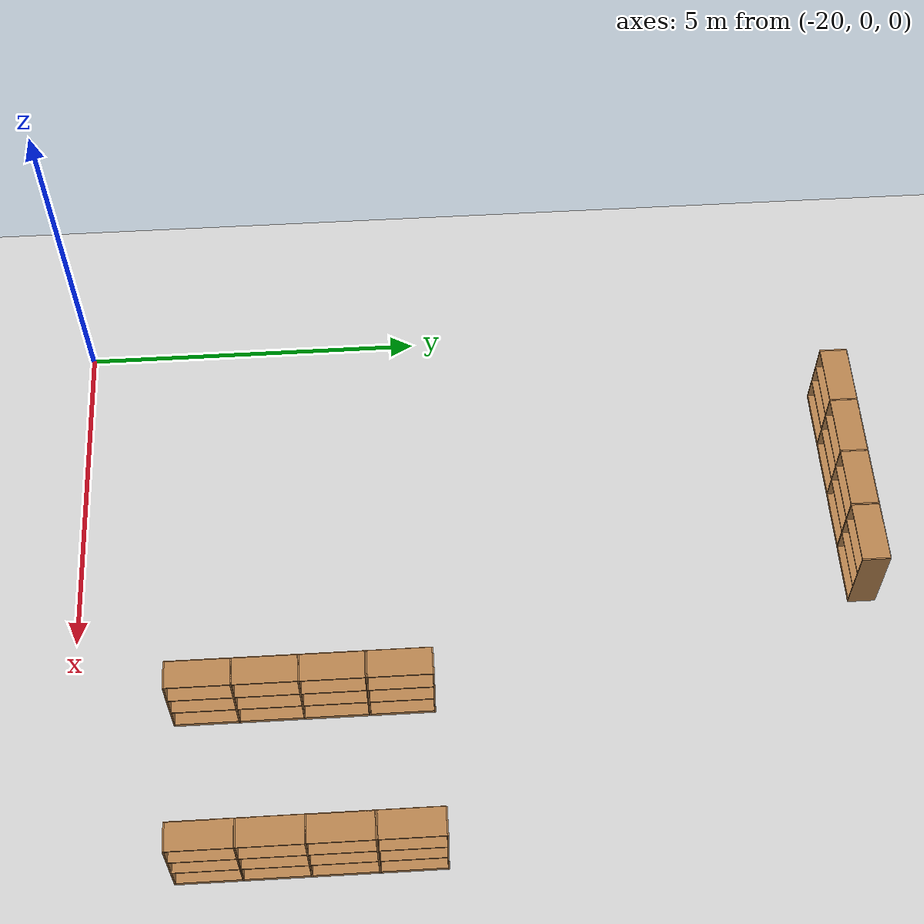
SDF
<sdf version="1.6">
 <world name="default">
  <model name="ground_plane">
   <static>1</static>
   <link name="link">
    <collision name="collision">
     <geometry><plane><normal>0 0 1</normal><size>100 100</size></plane></geometry>
     <surface><friction><ode><mu>100</mu><mu2>50</mu2></ode></friction></surface>
    </collision>
    <visual name="visual">
     <cast_shadows>0</cast_shadows>
     <geometry><plane><normal>0 0 1</normal><size>100 100</size></plane></geometry>
     <material>
      <script><uri>file://media/materials/scripts/gazebo.material</uri><name>Gazebo/Grey</name></script>
     </material>
    </visual>
   </link>
  </model>
  <model name="Bookself-4_clone_9">
   <model name="Bookself-3">
    <model name="bookshelf_0">
     <static>1</static>
     <link name="link">
      <inertial><mass>1</mass></inertial>
      <collision name="back">
       <pose>0 0.005 0.6 0 -0 0</pose>
       <geometry><box><size>0.9 0.01 1.2</size></box></geometry>
      </collision>
      <visual name="visual1">
       <pose>0 0.005 0.6 0 -0 0</pose>
       <geometry><box><size>0.9 0.01 1.2</size></box></geometry>
       <material>
        <script><uri>file://media/materials/scripts/gazebo.material</uri><name>Gazebo/Wood</name></script>
       </material>
      </visual>
      <collision name="left_side">
       <pose>0.45 -0.195 0.6 0 -0 0</pose>
       <geometry><box><size>0.02 0.4 1.2</size></box></geometry>
      </collision>
      <visual name="visual2">
       <pose>0.45 -0.195 0.6 0 -0 0</pose>
       <geometry><box><size>0.02 0.4 1.2</size></box></geometry>
       <material>
        <script><uri>file://media/materials/scripts/gazebo.material</uri><name>Gazebo/Wood</name></script>
       </material>
      </visual>
      <collision name="right_side">
       <pose>-0.45 -0.195 0.6 0 -0 0</pose>
       <geometry><box><size>0.02 0.4 1.2</size></box></geometry>
      </collision>
      <visual name="visual3">
       <pose>-0.45 -0.195 0.6 0 -0 0</pose>
       <geometry><box><size>0.02 0.4 1.2</size></box></geometry>
       <material>
        <script><uri>file://media/materials/scripts/gazebo.material</uri><name>Gazebo/Wood</name></script>
       </material>
      </visual>
      <collision name="bottom">
       <pose>0 -0.195 0.03 0 -0 0</pose>
       <geometry><box><size>0.88 0.4 0.06</size></box></geometry>
      </collision>
      <visual name="visual4">
       <pose>0 -0.195 0.03 0 -0 0</pose>
       <geometry><box><size>0.88 0.4 0.06</size></box></geometry>
       <material>
        <script><uri>file://media/materials/scripts/gazebo.material</uri><name>Gazebo/Wood</name></script>
       </material>
      </visual>
      <collision name="top">
       <pose>0 -0.195 1.19 0 -0 0</pose>
       <geometry><box><size>0.88 0.4 0.02</size></box></geometry>
      </collision>
      <visual name="visual5">
       <pose>0 -0.195 1.19 0 -0 0</pose>
       <geometry><box><size>0.88 0.4 0.02</size></box></geometry>
       <material>
        <script><uri>file://media/materials/scripts/gazebo.material</uri><name>Gazebo/Wood</name></script>
       </material>
      </visual>
      <collision name="low_shelf">
       <pose>0 -0.195 0.43 0 -0 0</pose>
       <geometry><box><size>0.88 0.4 0.02</size></box></geometry>
      </collision>
      <visual name="visual6">
       <pose>0 -0.195 0.43 0 -0 0</pose>
       <geometry><box><size>0.88 0.4 0.02</size></box></geometry>
       <material>
        <script><uri>file://media/materials/scripts/gazebo.material</uri><name>Gazebo/Wood</name></script>
       </material>
      </visual>
      <collision name="high_shelf">
       <pose>0 -0.195 0.8 0 -0 0</pose>
       <geometry><box><size>0.88 0.4 0.02</size></box></geometry>
      </collision>
      <visual name="visual7">
       <pose>0 -0.195 0.8 0 -0 0</pose>
       <geometry><box><size>0.88 0.4 0.02</size></box></geometry>
       <material>
        <script><uri>file://media/materials/scripts/gazebo.material</uri><name>Gazebo/Wood</name></script>
       </material>
      </visual>
     </link>
     <pose>-0.903039 0 0 0 -0 0</pose>
    </model>
    <model name="bookshelf_1">
     <static>1</static>
     <link name="link">
      <inertial><mass>1</mass></inertial>
      <collision name="back">
       <pose>0 0.005 0.6 0 -0 0</pose>
       <geometry><box><size>0.9 0.01 1.2</size></box></geometry>
      </collision>
      <visual name="visual1">
       <pose>0 0.005 0.6 0 -0 0</pose>
       <geometry><box><size>0.9 0.01 1.2</size></box></geometry>
       <material>
        <script><uri>file://media/materials/scripts/gazebo.material</uri><name>Gazebo/Wood</name></script>
       </material>
      </visual>
      <collision name="left_side">
       <pose>0.45 -0.195 0.6 0 -0 0</pose>
       <geometry><box><size>0.02 0.4 1.2</size></box></geometry>
      </collision>
      <visual name="visual2">
       <pose>0.45 -0.195 0.6 0 -0 0</pose>
       <geometry><box><size>0.02 0.4 1.2</size></box></geometry>
       <material>
        <script><uri>file://media/materials/scripts/gazebo.material</uri><name>Gazebo/Wood</name></script>
       </material>
      </visual>
      <collision name="right_side">
       <pose>-0.45 -0.195 0.6 0 -0 0</pose>
       <geometry><box><size>0.02 0.4 1.2</size></box></geometry>
      </collision>
      <visual name="visual3">
       <pose>-0.45 -0.195 0.6 0 -0 0</pose>
       <geometry><box><size>0.02 0.4 1.2</size></box></geometry>
       <material>
        <script><uri>file://media/materials/scripts/gazebo.material</uri><name>Gazebo/Wood</name></script>
       </material>
      </visual>
      <collision name="bottom">
       <pose>0 -0.195 0.03 0 -0 0</pose>
       <geometry><box><size>0.88 0.4 0.06</size></box></geometry>
      </collision>
      <visual name="visual4">
       <pose>0 -0.195 0.03 0 -0 0</pose>
       <geometry><box><size>0.88 0.4 0.06</size></box></geometry>
       <material>
        <script><uri>file://media/materials/scripts/gazebo.material</uri><name>Gazebo/Wood</name></script>
       </material>
      </visual>
      <collision name="top">
       <pose>0 -0.195 1.19 0 -0 0</pose>
       <geometry><box><size>0.88 0.4 0.02</size></box></geometry>
      </collision>
      <visual name="visual5">
       <pose>0 -0.195 1.19 0 -0 0</pose>
       <geometry><box><size>0.88 0.4 0.02</size></box></geometry>
       <material>
        <script><uri>file://media/materials/scripts/gazebo.material</uri><name>Gazebo/Wood</name></script>
       </material>
      </visual>
      <collision name="low_shelf">
       <pose>0 -0.195 0.43 0 -0 0</pose>
       <geometry><box><size>0.88 0.4 0.02</size></box></geometry>
      </collision>
      <visual name="visual6">
       <pose>0 -0.195 0.43 0 -0 0</pose>
       <geometry><box><size>0.88 0.4 0.02</size></box></geometry>
       <material>
        <script><uri>file://media/materials/scripts/gazebo.material</uri><name>Gazebo/Wood</name></script>
       </material>
      </visual>
      <collision name="high_shelf">
       <pose>0 -0.195 0.8 0 -0 0</pose>
       <geometry><box><size>0.88 0.4 0.02</size></box></geometry>
      </collision>
      <visual name="visual7">
       <pose>0 -0.195 0.8 0 -0 0</pose>
       <geometry><box><size>0.88 0.4 0.02</size></box></geometry>
       <material>
        <script><uri>file://media/materials/scripts/gazebo.material</uri><name>Gazebo/Wood</name></script>
       </material>
      </visual>
     </link>
     <pose>0.000535 0 0 0 -0 0</pose>
    </model>
    <model name="bookshelf_1_clone">
     <static>1</static>
     <link name="link">
      <inertial><mass>1</mass></inertial>
      <collision name="back">
       <pose>0 0.005 0.6 0 -0 0</pose>
       <geometry><box><size>0.9 0.01 1.2</size></box></geometry>
      </collision>
      <visual name="visual1">
       <pose>0 0.005 0.6 0 -0 0</pose>
       <geometry><box><size>0.9 0.01 1.2</size></box></geometry>
       <material>
        <script><uri>file://media/materials/scripts/gazebo.material</uri><name>Gazebo/Wood</name></script>
       </material>
      </visual>
      <collision name="left_side">
       <pose>0.45 -0.195 0.6 0 -0 0</pose>
       <geometry><box><size>0.02 0.4 1.2</size></box></geometry>
      </collision>
      <visual name="visual2">
       <pose>0.45 -0.195 0.6 0 -0 0</pose>
       <geometry><box><size>0.02 0.4 1.2</size></box></geometry>
       <material>
        <script><uri>file://media/materials/scripts/gazebo.material</uri><name>Gazebo/Wood</name></script>
       </material>
      </visual>
      <collision name="right_side">
       <pose>-0.45 -0.195 0.6 0 -0 0</pose>
       <geometry><box><size>0.02 0.4 1.2</size></box></geometry>
      </collision>
      <visual name="visual3">
       <pose>-0.45 -0.195 0.6 0 -0 0</pose>
       <geometry><box><size>0.02 0.4 1.2</size></box></geometry>
       <material>
        <script><uri>file://media/materials/scripts/gazebo.material</uri><name>Gazebo/Wood</name></script>
       </material>
      </visual>
      <collision name="bottom">
       <pose>0 -0.195 0.03 0 -0 0</pose>
       <geometry><box><size>0.88 0.4 0.06</size></box></geometry>
      </collision>
      <visual name="visual4">
       <pose>0 -0.195 0.03 0 -0 0</pose>
       <geometry><box><size>0.88 0.4 0.06</size></box></geometry>
       <material>
        <script><uri>file://media/materials/scripts/gazebo.material</uri><name>Gazebo/Wood</name></script>
       </material>
      </visual>
      <collision name="top">
       <pose>0 -0.195 1.19 0 -0 0</pose>
       <geometry><box><size>0.88 0.4 0.02</size></box></geometry>
      </collision>
      <visual name="visual5">
       <pose>0 -0.195 1.19 0 -0 0</pose>
       <geometry><box><size>0.88 0.4 0.02</size></box></geometry>
       <material>
        <script><uri>file://media/materials/scripts/gazebo.material</uri><name>Gazebo/Wood</name></script>
       </material>
      </visual>
      <collision name="low_shelf">
       <pose>0 -0.195 0.43 0 -0 0</pose>
       <geometry><box><size>0.88 0.4 0.02</size></box></geometry>
      </collision>
      <visual name="visual6">
       <pose>0 -0.195 0.43 0 -0 0</pose>
       <geometry><box><size>0.88 0.4 0.02</size></box></geometry>
       <material>
        <script><uri>file://media/materials/scripts/gazebo.material</uri><name>Gazebo/Wood</name></script>
       </material>
      </visual>
      <collision name="high_shelf">
       <pose>0 -0.195 0.8 0 -0 0</pose>
       <geometry><box><size>0.88 0.4 0.02</size></box></geometry>
      </collision>
      <visual name="visual7">
       <pose>0 -0.195 0.8 0 -0 0</pose>
       <geometry><box><size>0.88 0.4 0.02</size></box></geometry>
       <material>
        <script><uri>file://media/materials/scripts/gazebo.material</uri><name>Gazebo/Wood</name></script>
       </material>
      </visual>
     </link>
     <pose>0.902502 0 0 0 -0 0</pose>
    </model>
    <static>1</static>
    <pose>-0.906894 3e-05 0 0 -0 0</pose>
   </model>
   <model name="bookshelf">
    <static>1</static>
    <link name="link">
     <inertial><mass>1</mass></inertial>
     <collision name="back">
      <pose>0 0.005 0.6 0 -0 0</pose>
      <geometry><box><size>0.9 0.01 1.2</size></box></geometry>
     </collision>
     <visual name="visual1">
      <pose>0 0.005 0.6 0 -0 0</pose>
      <geometry><box><size>0.9 0.01 1.2</size></box></geometry>
      <material>
       <script><uri>file://media/materials/scripts/gazebo.material</uri><name>Gazebo/Wood</name></script>
      </material>
     </visual>
     <collision name="left_side">
      <pose>0.45 -0.195 0.6 0 -0 0</pose>
      <geometry><box><size>0.02 0.4 1.2</size></box></geometry>
     </collision>
     <visual name="visual2">
      <pose>0.45 -0.195 0.6 0 -0 0</pose>
      <geometry><box><size>0.02 0.4 1.2</size></box></geometry>
      <material>
       <script><uri>file://media/materials/scripts/gazebo.material</uri><name>Gazebo/Wood</name></script>
      </material>
     </visual>
     <collision name="right_side">
      <pose>-0.45 -0.195 0.6 0 -0 0</pose>
      <geometry><box><size>0.02 0.4 1.2</size></box></geometry>
     </collision>
     <visual name="visual3">
      <pose>-0.45 -0.195 0.6 0 -0 0</pose>
      <geometry><box><size>0.02 0.4 1.2</size></box></geometry>
      <material>
       <script><uri>file://media/materials/scripts/gazebo.material</uri><name>Gazebo/Wood</name></script>
      </material>
     </visual>
     <collision name="bottom">
      <pose>0 -0.195 0.03 0 -0 0</pose>
      <geometry><box><size>0.88 0.4 0.06</size></box></geometry>
     </collision>
     <visual name="visual4">
      <pose>0 -0.195 0.03 0 -0 0</pose>
      <geometry><box><size>0.88 0.4 0.06</size></box></geometry>
      <material>
       <script><uri>file://media/materials/scripts/gazebo.material</uri><name>Gazebo/Wood</name></script>
      </material>
     </visual>
     <collision name="top">
      <pose>0 -0.195 1.19 0 -0 0</pose>
      <geometry><box><size>0.88 0.4 0.02</size></box></geometry>
     </collision>
     <visual name="visual5">
      <pose>0 -0.195 1.19 0 -0 0</pose>
      <geometry><box><size>0.88 0.4 0.02</size></box></geometry>
      <material>
       <script><uri>file://media/materials/scripts/gazebo.material</uri><name>Gazebo/Wood</name></script>
      </material>
     </visual>
     <collision name="low_shelf">
      <pose>0 -0.195 0.43 0 -0 0</pose>
      <geometry><box><size>0.88 0.4 0.02</size></box></geometry>
     </collision>
     <visual name="visual6">
      <pose>0 -0.195 0.43 0 -0 0</pose>
      <geometry><box><size>0.88 0.4 0.02</size></box></geometry>
      <material>
       <script><uri>file://media/materials/scripts/gazebo.material</uri><name>Gazebo/Wood</name></script>
      </material>
     </visual>
     <collision name="high_shelf">
      <pose>0 -0.195 0.8 0 -0 0</pose>
      <geometry><box><size>0.88 0.4 0.02</size></box></geometry>
     </collision>
     <visual name="visual7">
      <pose>0 -0.195 0.8 0 -0 0</pose>
      <geometry><box><size>0.88 0.4 0.02</size></box></geometry>
      <material>
       <script><uri>file://media/materials/scripts/gazebo.material</uri><name>Gazebo/Wood</name></script>
      </material>
     </visual>
    </link>
    <pose>0.906808 3e-05 0 0 -0 0</pose>
   </model>
   <static>0</static>
   <pose>-16.3845 11.4786 0 0 -0 0</pose>
  </model>
  <model name="Bookself-4_clone_14_clone_4">
   <model name="Bookself-3">
    <model name="bookshelf_0">
     <static>1</static>
     <link name="link">
      <inertial><mass>1</mass></inertial>
      <collision name="back">
       <pose>0 0.005 0.6 0 -0 0</pose>
       <geometry><box><size>0.9 0.01 1.2</size></box></geometry>
      </collision>
      <visual name="visual1">
       <pose>0 0.005 0.6 0 -0 0</pose>
       <geometry><box><size>0.9 0.01 1.2</size></box></geometry>
       <material>
        <script><uri>file://media/materials/scripts/gazebo.material</uri><name>Gazebo/Wood</name></script>
       </material>
      </visual>
      <collision name="left_side">
       <pose>0.45 -0.195 0.6 0 -0 0</pose>
       <geometry><box><size>0.02 0.4 1.2</size></box></geometry>
      </collision>
      <visual name="visual2">
       <pose>0.45 -0.195 0.6 0 -0 0</pose>
       <geometry><box><size>0.02 0.4 1.2</size></box></geometry>
       <material>
        <script><uri>file://media/materials/scripts/gazebo.material</uri><name>Gazebo/Wood</name></script>
       </material>
      </visual>
      <collision name="right_side">
       <pose>-0.45 -0.195 0.6 0 -0 0</pose>
       <geometry><box><size>0.02 0.4 1.2</size></box></geometry>
      </collision>
      <visual name="visual3">
       <pose>-0.45 -0.195 0.6 0 -0 0</pose>
       <geometry><box><size>0.02 0.4 1.2</size></box></geometry>
       <material>
        <script><uri>file://media/materials/scripts/gazebo.material</uri><name>Gazebo/Wood</name></script>
       </material>
      </visual>
      <collision name="bottom">
       <pose>0 -0.195 0.03 0 -0 0</pose>
       <geometry><box><size>0.88 0.4 0.06</size></box></geometry>
      </collision>
      <visual name="visual4">
       <pose>0 -0.195 0.03 0 -0 0</pose>
       <geometry><box><size>0.88 0.4 0.06</size></box></geometry>
       <material>
        <script><uri>file://media/materials/scripts/gazebo.material</uri><name>Gazebo/Wood</name></script>
       </material>
      </visual>
      <collision name="top">
       <pose>0 -0.195 1.19 0 -0 0</pose>
       <geometry><box><size>0.88 0.4 0.02</size></box></geometry>
      </collision>
      <visual name="visual5">
       <pose>0 -0.195 1.19 0 -0 0</pose>
       <geometry><box><size>0.88 0.4 0.02</size></box></geometry>
       <material>
        <script><uri>file://media/materials/scripts/gazebo.material</uri><name>Gazebo/Wood</name></script>
       </material>
      </visual>
      <collision name="low_shelf">
       <pose>0 -0.195 0.43 0 -0 0</pose>
       <geometry><box><size>0.88 0.4 0.02</size></box></geometry>
      </collision>
      <visual name="visual6">
       <pose>0 -0.195 0.43 0 -0 0</pose>
       <geometry><box><size>0.88 0.4 0.02</size></box></geometry>
       <material>
        <script><uri>file://media/materials/scripts/gazebo.material</uri><name>Gazebo/Wood</name></script>
       </material>
      </visual>
      <collision name="high_shelf">
       <pose>0 -0.195 0.8 0 -0 0</pose>
       <geometry><box><size>0.88 0.4 0.02</size></box></geometry>
      </collision>
      <visual name="visual7">
       <pose>0 -0.195 0.8 0 -0 0</pose>
       <geometry><box><size>0.88 0.4 0.02</size></box></geometry>
       <material>
        <script><uri>file://media/materials/scripts/gazebo.material</uri><name>Gazebo/Wood</name></script>
       </material>
      </visual>
     </link>
     <pose>-0.903039 0 0 0 -0 0</pose>
    </model>
    <model name="bookshelf_1">
     <static>1</static>
     <link name="link">
      <inertial><mass>1</mass></inertial>
      <collision name="back">
       <pose>0 0.005 0.6 0 -0 0</pose>
       <geometry><box><size>0.9 0.01 1.2</size></box></geometry>
      </collision>
      <visual name="visual1">
       <pose>0 0.005 0.6 0 -0 0</pose>
       <geometry><box><size>0.9 0.01 1.2</size></box></geometry>
       <material>
        <script><uri>file://media/materials/scripts/gazebo.material</uri><name>Gazebo/Wood</name></script>
       </material>
      </visual>
      <collision name="left_side">
       <pose>0.45 -0.195 0.6 0 -0 0</pose>
       <geometry><box><size>0.02 0.4 1.2</size></box></geometry>
      </collision>
      <visual name="visual2">
       <pose>0.45 -0.195 0.6 0 -0 0</pose>
       <geometry><box><size>0.02 0.4 1.2</size></box></geometry>
       <material>
        <script><uri>file://media/materials/scripts/gazebo.material</uri><name>Gazebo/Wood</name></script>
       </material>
      </visual>
      <collision name="right_side">
       <pose>-0.45 -0.195 0.6 0 -0 0</pose>
       <geometry><box><size>0.02 0.4 1.2</size></box></geometry>
      </collision>
      <visual name="visual3">
       <pose>-0.45 -0.195 0.6 0 -0 0</pose>
       <geometry><box><size>0.02 0.4 1.2</size></box></geometry>
       <material>
        <script><uri>file://media/materials/scripts/gazebo.material</uri><name>Gazebo/Wood</name></script>
       </material>
      </visual>
      <collision name="bottom">
       <pose>0 -0.195 0.03 0 -0 0</pose>
       <geometry><box><size>0.88 0.4 0.06</size></box></geometry>
      </collision>
      <visual name="visual4">
       <pose>0 -0.195 0.03 0 -0 0</pose>
       <geometry><box><size>0.88 0.4 0.06</size></box></geometry>
       <material>
        <script><uri>file://media/materials/scripts/gazebo.material</uri><name>Gazebo/Wood</name></script>
       </material>
      </visual>
      <collision name="top">
       <pose>0 -0.195 1.19 0 -0 0</pose>
       <geometry><box><size>0.88 0.4 0.02</size></box></geometry>
      </collision>
      <visual name="visual5">
       <pose>0 -0.195 1.19 0 -0 0</pose>
       <geometry><box><size>0.88 0.4 0.02</size></box></geometry>
       <material>
        <script><uri>file://media/materials/scripts/gazebo.material</uri><name>Gazebo/Wood</name></script>
       </material>
      </visual>
      <collision name="low_shelf">
       <pose>0 -0.195 0.43 0 -0 0</pose>
       <geometry><box><size>0.88 0.4 0.02</size></box></geometry>
      </collision>
      <visual name="visual6">
       <pose>0 -0.195 0.43 0 -0 0</pose>
       <geometry><box><size>0.88 0.4 0.02</size></box></geometry>
       <material>
        <script><uri>file://media/materials/scripts/gazebo.material</uri><name>Gazebo/Wood</name></script>
       </material>
      </visual>
      <collision name="high_shelf">
       <pose>0 -0.195 0.8 0 -0 0</pose>
       <geometry><box><size>0.88 0.4 0.02</size></box></geometry>
      </collision>
      <visual name="visual7">
       <pose>0 -0.195 0.8 0 -0 0</pose>
       <geometry><box><size>0.88 0.4 0.02</size></box></geometry>
       <material>
        <script><uri>file://media/materials/scripts/gazebo.material</uri><name>Gazebo/Wood</name></script>
       </material>
      </visual>
     </link>
     <pose>0.000535 0 0 0 -0 0</pose>
    </model>
    <model name="bookshelf_1_clone">
     <static>1</static>
     <link name="link">
      <inertial><mass>1</mass></inertial>
      <collision name="back">
       <pose>0 0.005 0.6 0 -0 0</pose>
       <geometry><box><size>0.9 0.01 1.2</size></box></geometry>
      </collision>
      <visual name="visual1">
       <pose>0 0.005 0.6 0 -0 0</pose>
       <geometry><box><size>0.9 0.01 1.2</size></box></geometry>
       <material>
        <script><uri>file://media/materials/scripts/gazebo.material</uri><name>Gazebo/Wood</name></script>
       </material>
      </visual>
      <collision name="left_side">
       <pose>0.45 -0.195 0.6 0 -0 0</pose>
       <geometry><box><size>0.02 0.4 1.2</size></box></geometry>
      </collision>
      <visual name="visual2">
       <pose>0.45 -0.195 0.6 0 -0 0</pose>
       <geometry><box><size>0.02 0.4 1.2</size></box></geometry>
       <material>
        <script><uri>file://media/materials/scripts/gazebo.material</uri><name>Gazebo/Wood</name></script>
       </material>
      </visual>
      <collision name="right_side">
       <pose>-0.45 -0.195 0.6 0 -0 0</pose>
       <geometry><box><size>0.02 0.4 1.2</size></box></geometry>
      </collision>
      <visual name="visual3">
       <pose>-0.45 -0.195 0.6 0 -0 0</pose>
       <geometry><box><size>0.02 0.4 1.2</size></box></geometry>
       <material>
        <script><uri>file://media/materials/scripts/gazebo.material</uri><name>Gazebo/Wood</name></script>
       </material>
      </visual>
      <collision name="bottom">
       <pose>0 -0.195 0.03 0 -0 0</pose>
       <geometry><box><size>0.88 0.4 0.06</size></box></geometry>
      </collision>
      <visual name="visual4">
       <pose>0 -0.195 0.03 0 -0 0</pose>
       <geometry><box><size>0.88 0.4 0.06</size></box></geometry>
       <material>
        <script><uri>file://media/materials/scripts/gazebo.material</uri><name>Gazebo/Wood</name></script>
       </material>
      </visual>
      <collision name="top">
       <pose>0 -0.195 1.19 0 -0 0</pose>
       <geometry><box><size>0.88 0.4 0.02</size></box></geometry>
      </collision>
      <visual name="visual5">
       <pose>0 -0.195 1.19 0 -0 0</pose>
       <geometry><box><size>0.88 0.4 0.02</size></box></geometry>
       <material>
        <script><uri>file://media/materials/scripts/gazebo.material</uri><name>Gazebo/Wood</name></script>
       </material>
      </visual>
      <collision name="low_shelf">
       <pose>0 -0.195 0.43 0 -0 0</pose>
       <geometry><box><size>0.88 0.4 0.02</size></box></geometry>
      </collision>
      <visual name="visual6">
       <pose>0 -0.195 0.43 0 -0 0</pose>
       <geometry><box><size>0.88 0.4 0.02</size></box></geometry>
       <material>
        <script><uri>file://media/materials/scripts/gazebo.material</uri><name>Gazebo/Wood</name></script>
       </material>
      </visual>
      <collision name="high_shelf">
       <pose>0 -0.195 0.8 0 -0 0</pose>
       <geometry><box><size>0.88 0.4 0.02</size></box></geometry>
      </collision>
      <visual name="visual7">
       <pose>0 -0.195 0.8 0 -0 0</pose>
       <geometry><box><size>0.88 0.4 0.02</size></box></geometry>
       <material>
        <script><uri>file://media/materials/scripts/gazebo.material</uri><name>Gazebo/Wood</name></script>
       </material>
      </visual>
     </link>
     <pose>0.902502 0 0 0 -0 0</pose>
    </model>
    <static>1</static>
    <pose>-0.906894 3e-05 0 0 -0 0</pose>
   </model>
   <model name="bookshelf">
    <static>1</static>
    <link name="link">
     <inertial><mass>1</mass></inertial>
     <collision name="back">
      <pose>0 0.005 0.6 0 -0 0</pose>
      <geometry><box><size>0.9 0.01 1.2</size></box></geometry>
     </collision>
     <visual name="visual1">
      <pose>0 0.005 0.6 0 -0 0</pose>
      <geometry><box><size>0.9 0.01 1.2</size></box></geometry>
      <material>
       <script><uri>file://media/materials/scripts/gazebo.material</uri><name>Gazebo/Wood</name></script>
      </material>
     </visual>
     <collision name="left_side">
      <pose>0.45 -0.195 0.6 0 -0 0</pose>
      <geometry><box><size>0.02 0.4 1.2</size></box></geometry>
     </collision>
     <visual name="visual2">
      <pose>0.45 -0.195 0.6 0 -0 0</pose>
      <geometry><box><size>0.02 0.4 1.2</size></box></geometry>
      <material>
       <script><uri>file://media/materials/scripts/gazebo.material</uri><name>Gazebo/Wood</name></script>
      </material>
     </visual>
     <collision name="right_side">
      <pose>-0.45 -0.195 0.6 0 -0 0</pose>
      <geometry><box><size>0.02 0.4 1.2</size></box></geometry>
     </collision>
     <visual name="visual3">
      <pose>-0.45 -0.195 0.6 0 -0 0</pose>
      <geometry><box><size>0.02 0.4 1.2</size></box></geometry>
      <material>
       <script><uri>file://media/materials/scripts/gazebo.material</uri><name>Gazebo/Wood</name></script>
      </material>
     </visual>
     <collision name="bottom">
      <pose>0 -0.195 0.03 0 -0 0</pose>
      <geometry><box><size>0.88 0.4 0.06</size></box></geometry>
     </collision>
     <visual name="visual4">
      <pose>0 -0.195 0.03 0 -0 0</pose>
      <geometry><box><size>0.88 0.4 0.06</size></box></geometry>
      <material>
       <script><uri>file://media/materials/scripts/gazebo.material</uri><name>Gazebo/Wood</name></script>
      </material>
     </visual>
     <collision name="top">
      <pose>0 -0.195 1.19 0 -0 0</pose>
      <geometry><box><size>0.88 0.4 0.02</size></box></geometry>
     </collision>
     <visual name="visual5">
      <pose>0 -0.195 1.19 0 -0 0</pose>
      <geometry><box><size>0.88 0.4 0.02</size></box></geometry>
      <material>
       <script><uri>file://media/materials/scripts/gazebo.material</uri><name>Gazebo/Wood</name></script>
      </material>
     </visual>
     <collision name="low_shelf">
      <pose>0 -0.195 0.43 0 -0 0</pose>
      <geometry><box><size>0.88 0.4 0.02</size></box></geometry>
     </collision>
     <visual name="visual6">
      <pose>0 -0.195 0.43 0 -0 0</pose>
      <geometry><box><size>0.88 0.4 0.02</size></box></geometry>
      <material>
       <script><uri>file://media/materials/scripts/gazebo.material</uri><name>Gazebo/Wood</name></script>
      </material>
     </visual>
     <collision name="high_shelf">
      <pose>0 -0.195 0.8 0 -0 0</pose>
      <geometry><box><size>0.88 0.4 0.02</size></box></geometry>
     </collision>
     <visual name="visual7">
      <pose>0 -0.195 0.8 0 -0 0</pose>
      <geometry><box><size>0.88 0.4 0.02</size></box></geometry>
      <material>
       <script><uri>file://media/materials/scripts/gazebo.material</uri><name>Gazebo/Wood</name></script>
      </material>
     </visual>
    </link>
    <pose>0.906808 3e-05 0 0 -0 0</pose>
   </model>
   <static>0</static>
   <pose>-11.7252 3.75572 0 0 -0 1.5707</pose>
  </model>
  <model name="Bookself-4_clone_14_clone_5">
   <model name="Bookself-3">
    <model name="bookshelf_0">
     <static>1</static>
     <link name="link">
      <inertial><mass>1</mass></inertial>
      <collision name="back">
       <pose>0 0.005 0.6 0 -0 0</pose>
       <geometry><box><size>0.9 0.01 1.2</size></box></geometry>
      </collision>
      <visual name="visual1">
       <pose>0 0.005 0.6 0 -0 0</pose>
       <geometry><box><size>0.9 0.01 1.2</size></box></geometry>
       <material>
        <script><uri>file://media/materials/scripts/gazebo.material</uri><name>Gazebo/Wood</name></script>
       </material>
      </visual>
      <collision name="left_side">
       <pose>0.45 -0.195 0.6 0 -0 0</pose>
       <geometry><box><size>0.02 0.4 1.2</size></box></geometry>
      </collision>
      <visual name="visual2">
       <pose>0.45 -0.195 0.6 0 -0 0</pose>
       <geometry><box><size>0.02 0.4 1.2</size></box></geometry>
       <material>
        <script><uri>file://media/materials/scripts/gazebo.material</uri><name>Gazebo/Wood</name></script>
       </material>
      </visual>
      <collision name="right_side">
       <pose>-0.45 -0.195 0.6 0 -0 0</pose>
       <geometry><box><size>0.02 0.4 1.2</size></box></geometry>
      </collision>
      <visual name="visual3">
       <pose>-0.45 -0.195 0.6 0 -0 0</pose>
       <geometry><box><size>0.02 0.4 1.2</size></box></geometry>
       <material>
        <script><uri>file://media/materials/scripts/gazebo.material</uri><name>Gazebo/Wood</name></script>
       </material>
      </visual>
      <collision name="bottom">
       <pose>0 -0.195 0.03 0 -0 0</pose>
       <geometry><box><size>0.88 0.4 0.06</size></box></geometry>
      </collision>
      <visual name="visual4">
       <pose>0 -0.195 0.03 0 -0 0</pose>
       <geometry><box><size>0.88 0.4 0.06</size></box></geometry>
       <material>
        <script><uri>file://media/materials/scripts/gazebo.material</uri><name>Gazebo/Wood</name></script>
       </material>
      </visual>
      <collision name="top">
       <pose>0 -0.195 1.19 0 -0 0</pose>
       <geometry><box><size>0.88 0.4 0.02</size></box></geometry>
      </collision>
      <visual name="visual5">
       <pose>0 -0.195 1.19 0 -0 0</pose>
       <geometry><box><size>0.88 0.4 0.02</size></box></geometry>
       <material>
        <script><uri>file://media/materials/scripts/gazebo.material</uri><name>Gazebo/Wood</name></script>
       </material>
      </visual>
      <collision name="low_shelf">
       <pose>0 -0.195 0.43 0 -0 0</pose>
       <geometry><box><size>0.88 0.4 0.02</size></box></geometry>
      </collision>
      <visual name="visual6">
       <pose>0 -0.195 0.43 0 -0 0</pose>
       <geometry><box><size>0.88 0.4 0.02</size></box></geometry>
       <material>
        <script><uri>file://media/materials/scripts/gazebo.material</uri><name>Gazebo/Wood</name></script>
       </material>
      </visual>
      <collision name="high_shelf">
       <pose>0 -0.195 0.8 0 -0 0</pose>
       <geometry><box><size>0.88 0.4 0.02</size></box></geometry>
      </collision>
      <visual name="visual7">
       <pose>0 -0.195 0.8 0 -0 0</pose>
       <geometry><box><size>0.88 0.4 0.02</size></box></geometry>
       <material>
        <script><uri>file://media/materials/scripts/gazebo.material</uri><name>Gazebo/Wood</name></script>
       </material>
      </visual>
     </link>
     <pose>-0.903039 0 0 0 -0 0</pose>
    </model>
    <model name="bookshelf_1">
     <static>1</static>
     <link name="link">
      <inertial><mass>1</mass></inertial>
      <collision name="back">
       <pose>0 0.005 0.6 0 -0 0</pose>
       <geometry><box><size>0.9 0.01 1.2</size></box></geometry>
      </collision>
      <visual name="visual1">
       <pose>0 0.005 0.6 0 -0 0</pose>
       <geometry><box><size>0.9 0.01 1.2</size></box></geometry>
       <material>
        <script><uri>file://media/materials/scripts/gazebo.material</uri><name>Gazebo/Wood</name></script>
       </material>
      </visual>
      <collision name="left_side">
       <pose>0.45 -0.195 0.6 0 -0 0</pose>
       <geometry><box><size>0.02 0.4 1.2</size></box></geometry>
      </collision>
      <visual name="visual2">
       <pose>0.45 -0.195 0.6 0 -0 0</pose>
       <geometry><box><size>0.02 0.4 1.2</size></box></geometry>
       <material>
        <script><uri>file://media/materials/scripts/gazebo.material</uri><name>Gazebo/Wood</name></script>
       </material>
      </visual>
      <collision name="right_side">
       <pose>-0.45 -0.195 0.6 0 -0 0</pose>
       <geometry><box><size>0.02 0.4 1.2</size></box></geometry>
      </collision>
      <visual name="visual3">
       <pose>-0.45 -0.195 0.6 0 -0 0</pose>
       <geometry><box><size>0.02 0.4 1.2</size></box></geometry>
       <material>
        <script><uri>file://media/materials/scripts/gazebo.material</uri><name>Gazebo/Wood</name></script>
       </material>
      </visual>
      <collision name="bottom">
       <pose>0 -0.195 0.03 0 -0 0</pose>
       <geometry><box><size>0.88 0.4 0.06</size></box></geometry>
      </collision>
      <visual name="visual4">
       <pose>0 -0.195 0.03 0 -0 0</pose>
       <geometry><box><size>0.88 0.4 0.06</size></box></geometry>
       <material>
        <script><uri>file://media/materials/scripts/gazebo.material</uri><name>Gazebo/Wood</name></script>
       </material>
      </visual>
      <collision name="top">
       <pose>0 -0.195 1.19 0 -0 0</pose>
       <geometry><box><size>0.88 0.4 0.02</size></box></geometry>
      </collision>
      <visual name="visual5">
       <pose>0 -0.195 1.19 0 -0 0</pose>
       <geometry><box><size>0.88 0.4 0.02</size></box></geometry>
       <material>
        <script><uri>file://media/materials/scripts/gazebo.material</uri><name>Gazebo/Wood</name></script>
       </material>
      </visual>
      <collision name="low_shelf">
       <pose>0 -0.195 0.43 0 -0 0</pose>
       <geometry><box><size>0.88 0.4 0.02</size></box></geometry>
      </collision>
      <visual name="visual6">
       <pose>0 -0.195 0.43 0 -0 0</pose>
       <geometry><box><size>0.88 0.4 0.02</size></box></geometry>
       <material>
        <script><uri>file://media/materials/scripts/gazebo.material</uri><name>Gazebo/Wood</name></script>
       </material>
      </visual>
      <collision name="high_shelf">
       <pose>0 -0.195 0.8 0 -0 0</pose>
       <geometry><box><size>0.88 0.4 0.02</size></box></geometry>
      </collision>
      <visual name="visual7">
       <pose>0 -0.195 0.8 0 -0 0</pose>
       <geometry><box><size>0.88 0.4 0.02</size></box></geometry>
       <material>
        <script><uri>file://media/materials/scripts/gazebo.material</uri><name>Gazebo/Wood</name></script>
       </material>
      </visual>
     </link>
     <pose>0.000535 0 0 0 -0 0</pose>
    </model>
    <model name="bookshelf_1_clone">
     <static>1</static>
     <link name="link">
      <inertial><mass>1</mass></inertial>
      <collision name="back">
       <pose>0 0.005 0.6 0 -0 0</pose>
       <geometry><box><size>0.9 0.01 1.2</size></box></geometry>
      </collision>
      <visual name="visual1">
       <pose>0 0.005 0.6 0 -0 0</pose>
       <geometry><box><size>0.9 0.01 1.2</size></box></geometry>
       <material>
        <script><uri>file://media/materials/scripts/gazebo.material</uri><name>Gazebo/Wood</name></script>
       </material>
      </visual>
      <collision name="left_side">
       <pose>0.45 -0.195 0.6 0 -0 0</pose>
       <geometry><box><size>0.02 0.4 1.2</size></box></geometry>
      </collision>
      <visual name="visual2">
       <pose>0.45 -0.195 0.6 0 -0 0</pose>
       <geometry><box><size>0.02 0.4 1.2</size></box></geometry>
       <material>
        <script><uri>file://media/materials/scripts/gazebo.material</uri><name>Gazebo/Wood</name></script>
       </material>
      </visual>
      <collision name="right_side">
       <pose>-0.45 -0.195 0.6 0 -0 0</pose>
       <geometry><box><size>0.02 0.4 1.2</size></box></geometry>
      </collision>
      <visual name="visual3">
       <pose>-0.45 -0.195 0.6 0 -0 0</pose>
       <geometry><box><size>0.02 0.4 1.2</size></box></geometry>
       <material>
        <script><uri>file://media/materials/scripts/gazebo.material</uri><name>Gazebo/Wood</name></script>
       </material>
      </visual>
      <collision name="bottom">
       <pose>0 -0.195 0.03 0 -0 0</pose>
       <geometry><box><size>0.88 0.4 0.06</size></box></geometry>
      </collision>
      <visual name="visual4">
       <pose>0 -0.195 0.03 0 -0 0</pose>
       <geometry><box><size>0.88 0.4 0.06</size></box></geometry>
       <material>
        <script><uri>file://media/materials/scripts/gazebo.material</uri><name>Gazebo/Wood</name></script>
       </material>
      </visual>
      <collision name="top">
       <pose>0 -0.195 1.19 0 -0 0</pose>
       <geometry><box><size>0.88 0.4 0.02</size></box></geometry>
      </collision>
      <visual name="visual5">
       <pose>0 -0.195 1.19 0 -0 0</pose>
       <geometry><box><size>0.88 0.4 0.02</size></box></geometry>
       <material>
        <script><uri>file://media/materials/scripts/gazebo.material</uri><name>Gazebo/Wood</name></script>
       </material>
      </visual>
      <collision name="low_shelf">
       <pose>0 -0.195 0.43 0 -0 0</pose>
       <geometry><box><size>0.88 0.4 0.02</size></box></geometry>
      </collision>
      <visual name="visual6">
       <pose>0 -0.195 0.43 0 -0 0</pose>
       <geometry><box><size>0.88 0.4 0.02</size></box></geometry>
       <material>
        <script><uri>file://media/materials/scripts/gazebo.material</uri><name>Gazebo/Wood</name></script>
       </material>
      </visual>
      <collision name="high_shelf">
       <pose>0 -0.195 0.8 0 -0 0</pose>
       <geometry><box><size>0.88 0.4 0.02</size></box></geometry>
      </collision>
      <visual name="visual7">
       <pose>0 -0.195 0.8 0 -0 0</pose>
       <geometry><box><size>0.88 0.4 0.02</size></box></geometry>
       <material>
        <script><uri>file://media/materials/scripts/gazebo.material</uri><name>Gazebo/Wood</name></script>
       </material>
      </visual>
     </link>
     <pose>0.902502 0 0 0 -0 0</pose>
    </model>
    <static>1</static>
    <pose>-0.906894 3e-05 0 0 -0 0</pose>
   </model>
   <model name="bookshelf">
    <static>1</static>
    <link name="link">
     <inertial><mass>1</mass></inertial>
     <collision name="back">
      <pose>0 0.005 0.6 0 -0 0</pose>
      <geometry><box><size>0.9 0.01 1.2</size></box></geometry>
     </collision>
     <visual name="visual1">
      <pose>0 0.005 0.6 0 -0 0</pose>
      <geometry><box><size>0.9 0.01 1.2</size></box></geometry>
      <material>
       <script><uri>file://media/materials/scripts/gazebo.material</uri><name>Gazebo/Wood</name></script>
      </material>
     </visual>
     <collision name="left_side">
      <pose>0.45 -0.195 0.6 0 -0 0</pose>
      <geometry><box><size>0.02 0.4 1.2</size></box></geometry>
     </collision>
     <visual name="visual2">
      <pose>0.45 -0.195 0.6 0 -0 0</pose>
      <geometry><box><size>0.02 0.4 1.2</size></box></geometry>
      <material>
       <script><uri>file://media/materials/scripts/gazebo.material</uri><name>Gazebo/Wood</name></script>
      </material>
     </visual>
     <collision name="right_side">
      <pose>-0.45 -0.195 0.6 0 -0 0</pose>
      <geometry><box><size>0.02 0.4 1.2</size></box></geometry>
     </collision>
     <visual name="visual3">
      <pose>-0.45 -0.195 0.6 0 -0 0</pose>
      <geometry><box><size>0.02 0.4 1.2</size></box></geometry>
      <material>
       <script><uri>file://media/materials/scripts/gazebo.material</uri><name>Gazebo/Wood</name></script>
      </material>
     </visual>
     <collision name="bottom">
      <pose>0 -0.195 0.03 0 -0 0</pose>
      <geometry><box><size>0.88 0.4 0.06</size></box></geometry>
     </collision>
     <visual name="visual4">
      <pose>0 -0.195 0.03 0 -0 0</pose>
      <geometry><box><size>0.88 0.4 0.06</size></box></geometry>
      <material>
       <script><uri>file://media/materials/scripts/gazebo.material</uri><name>Gazebo/Wood</name></script>
      </material>
     </visual>
     <collision name="top">
      <pose>0 -0.195 1.19 0 -0 0</pose>
      <geometry><box><size>0.88 0.4 0.02</size></box></geometry>
     </collision>
     <visual name="visual5">
      <pose>0 -0.195 1.19 0 -0 0</pose>
      <geometry><box><size>0.88 0.4 0.02</size></box></geometry>
      <material>
       <script><uri>file://media/materials/scripts/gazebo.material</uri><name>Gazebo/Wood</name></script>
      </material>
     </visual>
     <collision name="low_shelf">
      <pose>0 -0.195 0.43 0 -0 0</pose>
      <geometry><box><size>0.88 0.4 0.02</size></box></geometry>
     </collision>
     <visual name="visual6">
      <pose>0 -0.195 0.43 0 -0 0</pose>
      <geometry><box><size>0.88 0.4 0.02</size></box></geometry>
      <material>
       <script><uri>file://media/materials/scripts/gazebo.material</uri><name>Gazebo/Wood</name></script>
      </material>
     </visual>
     <collision name="high_shelf">
      <pose>0 -0.195 0.8 0 -0 0</pose>
      <geometry><box><size>0.88 0.4 0.02</size></box></geometry>
     </collision>
     <visual name="visual7">
      <pose>0 -0.195 0.8 0 -0 0</pose>
      <geometry><box><size>0.88 0.4 0.02</size></box></geometry>
      <material>
       <script><uri>file://media/materials/scripts/gazebo.material</uri><name>Gazebo/Wood</name></script>
      </material>
     </visual>
    </link>
    <pose>0.906808 3e-05 0 0 -0 0</pose>
   </model>
   <static>0</static>
   <pose>-14.0198 3.68827 0 0 -0 1.5707</pose>
  </model>
 </world>
</sdf>
